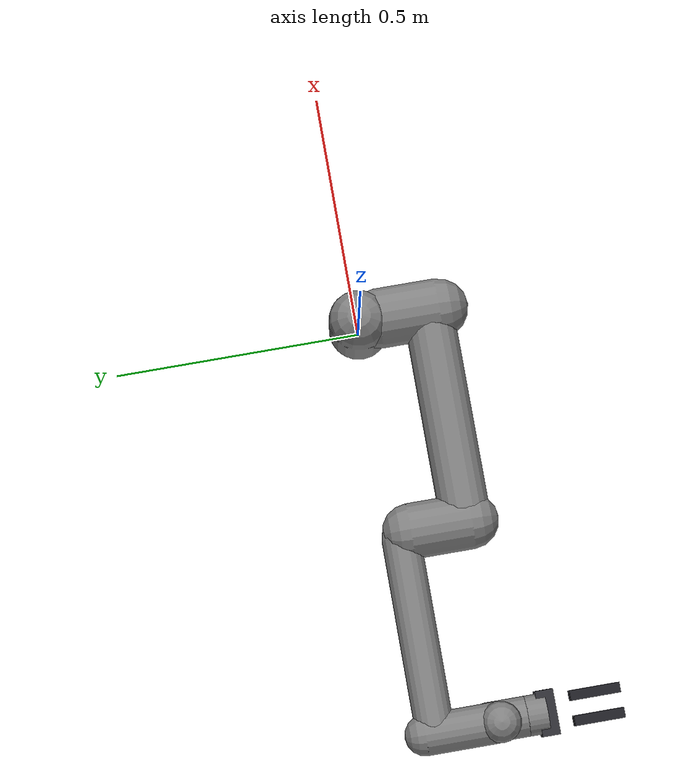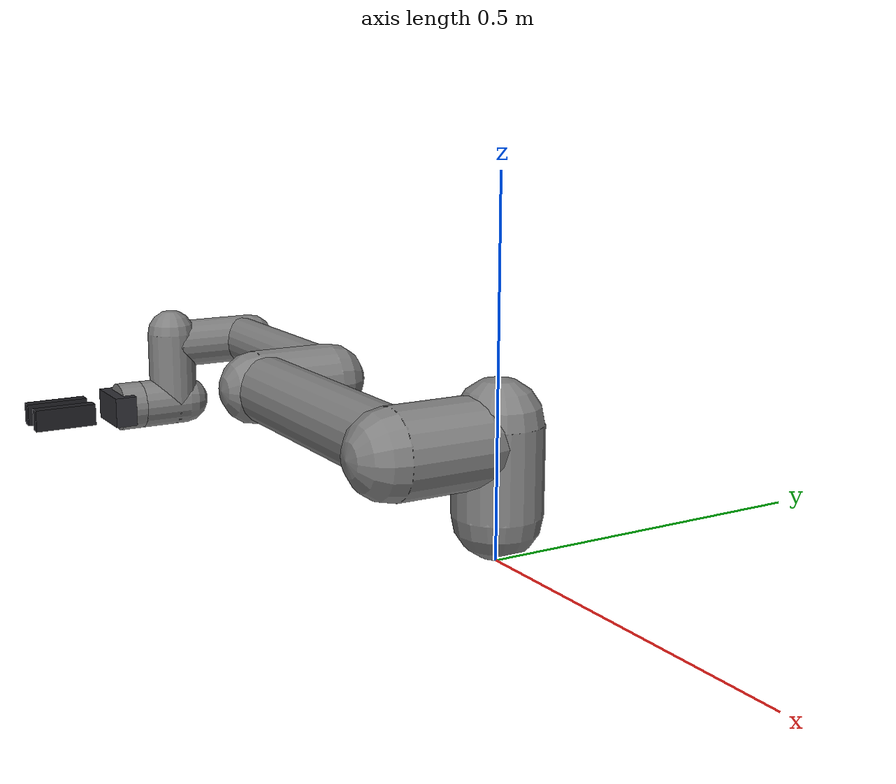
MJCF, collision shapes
<mujoco model="ur5e">
  <compiler angle="radian" meshdir="assets" autolimits="true"/>

  <!-- Vendored from Menagerie revision da76818e269b82289eba39808e2fb91d679d6994.
       ACT Lab adds the fixed timestep and educational parallel gripper below. -->
  <option integrator="implicitfast" timestep="0.002"/>

  <default>
    <default class="ur5e">
      <material specular="0.5" shininess="0.25"/>
      <joint axis="0 1 0" range="-6.28319 6.28319" armature="0.1"/>
      <general gaintype="fixed" biastype="affine" ctrlrange="-6.2831 6.2831" gainprm="2000" biasprm="0 -2000 0"
        forcerange="-150 150"/>
      <default class="size3">
        <default class="size3_limited">
          <joint range="-3.1415 3.1415"/>
          <general ctrlrange="-3.1415 3.1415"/>
        </default>
      </default>
      <default class="size1">
        <general gainprm="500" biasprm="0 -500 -150" forcerange="-28 28"/>
      </default>
      <default class="visual">
        <geom type="mesh" contype="0" conaffinity="0" group="2"/>
      </default>
      <default class="collision">
        <geom type="capsule" group="3"/>
        <default class="eef_collision">
          <geom type="cylinder"/>
        </default>
      </default>
      <site size="0.001" rgba="0.5 0.5 0.5 0.3" group="4"/>
    </default>
  </default>

  <asset>
    <material class="ur5e" name="black" rgba="0.033 0.033 0.033 1"/>
    <material class="ur5e" name="jointgray" rgba="0.278 0.278 0.278 1"/>
    <material class="ur5e" name="linkgray" rgba="0.82 0.82 0.82 1"/>
    <material class="ur5e" name="urblue" rgba="0.49 0.678 0.8 1"/>

    <mesh file="base_0.obj"/>
    <mesh file="base_1.obj"/>
    <mesh file="shoulder_0.obj"/>
    <mesh file="shoulder_1.obj"/>
    <mesh file="shoulder_2.obj"/>
    <mesh file="upperarm_0.obj"/>
    <mesh file="upperarm_1.obj"/>
    <mesh file="upperarm_2.obj"/>
    <mesh file="upperarm_3.obj"/>
    <mesh file="forearm_0.obj"/>
    <mesh file="forearm_1.obj"/>
    <mesh file="forearm_2.obj"/>
    <mesh file="forearm_3.obj"/>
    <mesh file="wrist1_0.obj"/>
    <mesh file="wrist1_1.obj"/>
    <mesh file="wrist1_2.obj"/>
    <mesh file="wrist2_0.obj"/>
    <mesh file="wrist2_1.obj"/>
    <mesh file="wrist2_2.obj"/>
    <mesh file="wrist3.obj"/>
  </asset>

  <worldbody>
    <light name="spotlight" mode="targetbodycom" target="wrist_2_link" pos="0 -1 2"/>
    <body name="base" quat="0 0 0 -1" childclass="ur5e">
      <inertial mass="4.0" pos="0 0 0" diaginertia="0.00443333156 0.00443333156 0.0072"/>
      <geom mesh="base_0" material="black" class="visual"/>
      <geom mesh="base_1" material="jointgray" class="visual"/>
      <body name="shoulder_link" pos="0 0 0.163" gravcomp="1">
        <inertial mass="3.7" pos="0 0 0" diaginertia="0.0102675 0.0102675 0.00666"/>
        <joint name="shoulder_pan_joint" class="size3" axis="0 0 1"/>
        <geom mesh="shoulder_0" material="urblue" class="visual"/>
        <geom mesh="shoulder_1" material="black" class="visual"/>
        <geom mesh="shoulder_2" material="jointgray" class="visual"/>
        <geom class="collision" size="0.06 0.06" pos="0 0 -0.04"/>
        <body name="upper_arm_link" pos="0 0.138 0" quat="1 0 1 0" gravcomp="1">
          <inertial mass="8.393" pos="0 0 0.2125" diaginertia="0.133886 0.133886 0.0151074"/>
          <joint name="shoulder_lift_joint" class="size3"/>
          <geom mesh="upperarm_0" material="linkgray" class="visual"/>
          <geom mesh="upperarm_1" material="black" class="visual"/>
          <geom mesh="upperarm_2" material="jointgray" class="visual"/>
          <geom mesh="upperarm_3" material="urblue" class="visual"/>
          <geom class="collision" pos="0 -0.04 0" quat="1 1 0 0" size="0.06 0.06"/>
          <geom class="collision" size="0.05 0.2" pos="0 0 0.2"/>
          <body name="forearm_link" pos="0 -0.131 0.425" gravcomp="1">
            <inertial mass="2.275" pos="0 0 0.196" diaginertia="0.0311796 0.0311796 0.004095"/>
            <joint name="elbow_joint" class="size3_limited"/>
            <geom mesh="forearm_0" material="urblue" class="visual"/>
            <geom mesh="forearm_1" material="linkgray" class="visual"/>
            <geom mesh="forearm_2" material="black" class="visual"/>
            <geom mesh="forearm_3" material="jointgray" class="visual"/>
            <geom class="collision" pos="0 0.08 0" quat="1 1 0 0" size="0.055 0.06"/>
            <geom class="collision" size="0.038 0.19" pos="0 0 0.2"/>
            <body name="wrist_1_link" pos="0 0 0.392" quat="1 0 1 0" gravcomp="1">
              <inertial mass="1.219" pos="0 0.127 0" diaginertia="0.0025599 0.0025599 0.0021942"/>
              <joint name="wrist_1_joint" class="size1"/>
              <geom mesh="wrist1_0" material="black" class="visual"/>
              <geom mesh="wrist1_1" material="urblue" class="visual"/>
              <geom mesh="wrist1_2" material="jointgray" class="visual"/>
              <geom class="collision" pos="0 0.05 0" quat="1 1 0 0" size="0.04 0.07"/>
              <body name="wrist_2_link" pos="0 0.127 0" gravcomp="1">
                <inertial mass="1.219" pos="0 0 0.1" diaginertia="0.0025599 0.0025599 0.0021942"/>
                <joint name="wrist_2_joint" axis="0 0 1" class="size1"/>
                <geom mesh="wrist2_0" material="black" class="visual"/>
                <geom mesh="wrist2_1" material="urblue" class="visual"/>
                <geom mesh="wrist2_2" material="jointgray" class="visual"/>
                <geom class="collision" size="0.04 0.06" pos="0 0 0.04"/>
                <geom class="collision" pos="0 0.02 0.1" quat="1 1 0 0" size="0.04 0.04"/>
                <body name="wrist_3_link" pos="0 0 0.1" gravcomp="1">
                  <inertial mass="0.1889" pos="0 0.0771683 0" quat="1 0 0 1"
                    diaginertia="0.000132134 9.90863e-05 9.90863e-05"/>
                  <joint name="wrist_3_joint" class="size1"/>
                  <geom material="linkgray" mesh="wrist3" class="visual"/>
                  <geom class="eef_collision" pos="0 0.08 0" quat="1 1 0 0" size="0.04 0.02"/>
                  <site name="attachment_site" pos="0 0.1 0" quat="-1 1 0 0"/>
                  <body name="gripper_palm" pos="0 0.1 0" quat="-0.7071068 0.7071068 0 0" gravcomp="1">
                    <geom name="gripper_palm_geom" type="box" size="0.045 0.025 0.018"
                      mass="0.25" rgba="0.18 0.18 0.2 1"/>
                    <site name="end_effector" pos="0 0 0.11" quat="1 0 0 0"/>
                    <body name="left_finger" pos="0.025 0 0.065" gravcomp="1">
                      <joint name="left_finger_joint" type="slide" axis="1 0 0"
                        range="0 0.025" damping="2"/>
                      <geom name="left_finger_pad" type="box" pos="0 0 0.035"
                        size="0.01 0.018 0.05" mass="0.005" friction="1.2 0.01 0.001"
                        rgba="0.12 0.12 0.14 1"/>
                    </body>
                    <body name="right_finger" pos="-0.025 0 0.065" gravcomp="1">
                      <joint name="right_finger_joint" type="slide" axis="-1 0 0"
                        range="0 0.025" damping="2"/>
                      <geom name="right_finger_pad" type="box" pos="0 0 0.035"
                        size="0.01 0.018 0.05" mass="0.005" friction="1.2 0.01 0.001"
                        rgba="0.12 0.12 0.14 1"/>
                    </body>
                  </body>
                </body>
              </body>
            </body>
          </body>
        </body>
      </body>
    </body>
  </worldbody>

  <actuator>
    <general class="size3" name="shoulder_pan" joint="shoulder_pan_joint"/>
    <general class="size3" name="shoulder_lift" joint="shoulder_lift_joint"/>
    <general class="size3_limited" name="elbow" joint="elbow_joint"/>
    <general class="size1" name="wrist_1" joint="wrist_1_joint"/>
    <general class="size1" name="wrist_2" joint="wrist_2_joint"/>
    <general class="size1" name="wrist_3" joint="wrist_3_joint"/>
    <velocity name="shoulder_pan_velocity" joint="shoulder_pan_joint" kv="600" ctrlrange="-1 1"/>
    <velocity name="shoulder_lift_velocity" joint="shoulder_lift_joint" kv="600" ctrlrange="-1 1"/>
    <velocity name="elbow_velocity" joint="elbow_joint" kv="600" ctrlrange="-1 1"/>
    <velocity name="wrist_1_velocity" joint="wrist_1_joint" kv="600" ctrlrange="-1 1"/>
    <velocity name="wrist_2_velocity" joint="wrist_2_joint" kv="600" ctrlrange="-1 1"/>
    <velocity name="wrist_3_velocity" joint="wrist_3_joint" kv="600" ctrlrange="-1 1"/>
    <position name="gripper" joint="left_finger_joint" kp="800"
      ctrlrange="0 0.025" forcerange="-20 20"/>
  </actuator>

  <equality>
    <joint name="coupled_fingers" joint1="left_finger_joint"
      joint2="right_finger_joint" polycoef="0 1 0 0 0"/>
  </equality>

  <keyframe>
    <key name="home" qpos="-1.5708 -1.5708 1.5708 -1.5708 -1.5708 0 0 0"
      ctrl="-1.5708 -1.5708 1.5708 -1.5708 -1.5708 0 0"/>
  </keyframe>
</mujoco>
